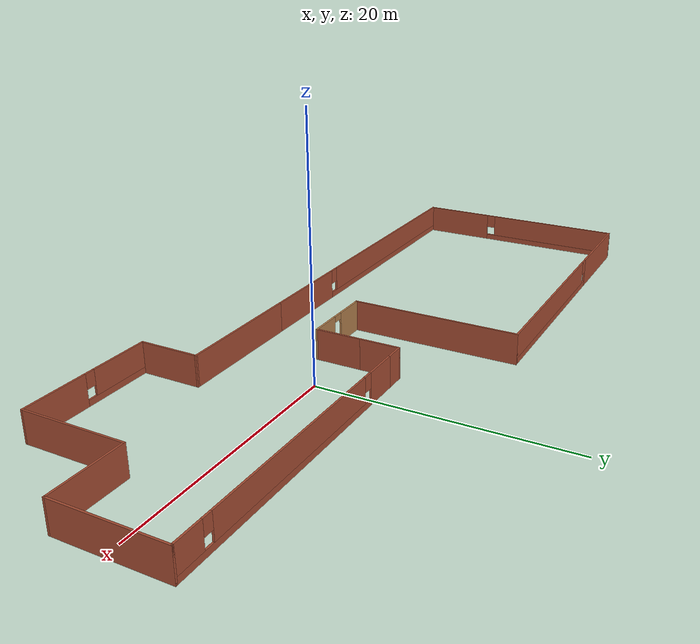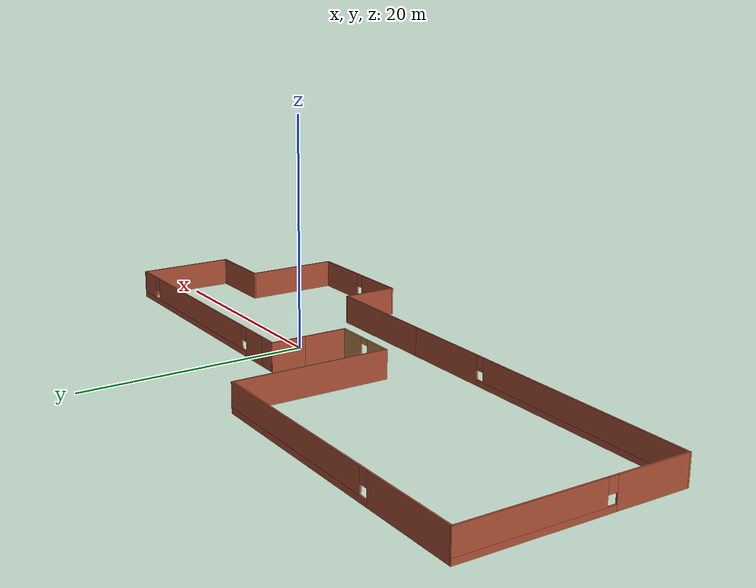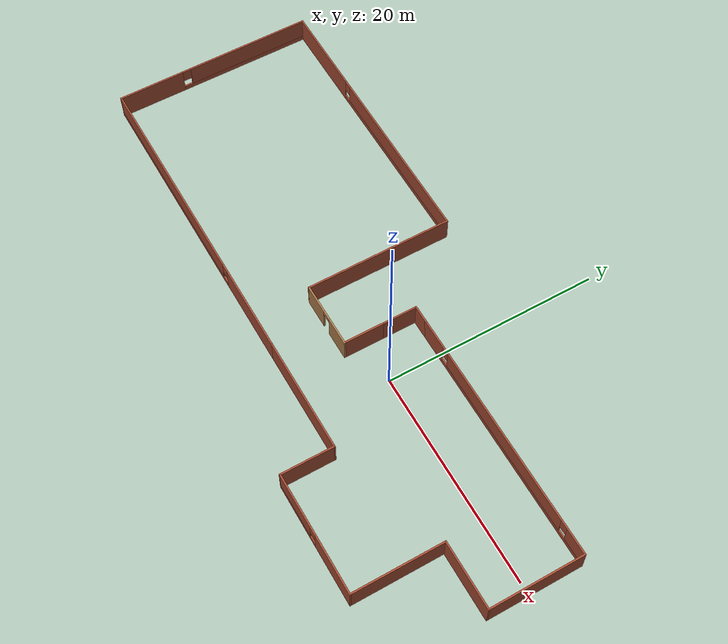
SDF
<?xml version='1.0'?>
<sdf version='1.6'>
  <model name='Balazs_Project1_Building'>
    <pose frame=''>-7.56 -0.32 0 0 -0 0</pose>
    <link name='Wall_0'>
      <collision name='Wall_0_Collision'>
        <geometry>
          <box>
            <size>3.75 0.15 2.5</size>
          </box>
        </geometry>
        <pose frame=''>0 0 1.25 0 -0 0</pose>
      </collision>
      <visual name='Wall_0_Visual'>
        <pose frame=''>0 0 1.25 0 -0 0</pose>
        <geometry>
          <box>
            <size>3.75 0.15 2.5</size>
          </box>
        </geometry>
        <material>
          <script>
            <uri>file://media/materials/scripts/gazebo.material</uri>
            <name>Gazebo/Bricks</name>
          </script>
          <ambient>1 1 1 1</ambient>
        </material>
        <meta>
          <layer>0</layer>
        </meta>
      </visual>
      <pose frame=''>3.75 0.2 0 0 -0 1.5708</pose>
    </link>
    <link name='Wall_10'>
      <collision name='Wall_10_Collision'>
        <geometry>
          <box>
            <size>5 0.15 2.5</size>
          </box>
        </geometry>
        <pose frame=''>0 0 1.25 0 -0 0</pose>
      </collision>
      <visual name='Wall_10_Visual'>
        <pose frame=''>0 0 1.25 0 -0 0</pose>
        <geometry>
          <box>
            <size>5 0.15 2.5</size>
          </box>
        </geometry>
        <material>
          <script>
            <uri>file://media/materials/scripts/gazebo.material</uri>
            <name>Gazebo/Bricks</name>
          </script>
          <ambient>1 1 1 1</ambient>
        </material>
        <meta>
          <layer>0</layer>
        </meta>
      </visual>
      <pose frame=''>11.5 -9.425 0 0 -0 1.5708</pose>
    </link>
    <link name='Wall_11'>
      <collision name='Wall_11_Collision'>
        <geometry>
          <box>
            <size>10.75 0.15 2.5</size>
          </box>
        </geometry>
        <pose frame=''>0 0 1.25 0 -0 0</pose>
      </collision>
      <visual name='Wall_11_Visual'>
        <pose frame=''>0 0 1.25 0 -0 0</pose>
        <geometry>
          <box>
            <size>10.75 0.15 2.5</size>
          </box>
        </geometry>
        <material>
          <script>
            <uri>file://media/materials/scripts/gazebo.material</uri>
            <name>Gazebo/Bricks</name>
          </script>
          <ambient>1 1 1 1</ambient>
        </material>
        <meta>
          <layer>0</layer>
        </meta>
      </visual>
      <pose frame=''>6.2 -7 0 0 -0 3.14159</pose>
    </link>
    <link name='Wall_12'>
      <pose frame=''>-13.9 -7 0 0 -0 3.14159</pose>
      <visual name='Wall_12_Visual_0'>
        <pose frame=''>-10.7696 0 1.25 0 -0 0</pose>
        <geometry>
          <box>
            <size>8.21088 0.15 2.5</size>
          </box>
        </geometry>
        <material>
          <script>
            <uri>file://media/materials/scripts/gazebo.material</uri>
            <name>Gazebo/Bricks</name>
          </script>
          <ambient>1 1 1 1</ambient>
        </material>
        <meta>
          <layer>0</layer>
        </meta>
      </visual>
      <collision name='Wall_12_Collision_0'>
        <geometry>
          <box>
            <size>8.21088 0.15 2.5</size>
          </box>
        </geometry>
        <pose frame=''>-10.7696 0 1.25 0 -0 0</pose>
      </collision>
      <visual name='Wall_12_Visual_1'>
        <pose frame=''>4.10544 0 0.25 0 -0 0</pose>
        <geometry>
          <box>
            <size>21.5391 0.15 0.5</size>
          </box>
        </geometry>
        <material>
          <script>
            <uri>file://media/materials/scripts/gazebo.material</uri>
            <name>Gazebo/Bricks</name>
          </script>
          <ambient>1 1 1 1</ambient>
        </material>
        <meta>
          <layer>0</layer>
        </meta>
      </visual>
      <collision name='Wall_12_Collision_1'>
        <geometry>
          <box>
            <size>21.5391 0.15 0.5</size>
          </box>
        </geometry>
        <pose frame=''>4.10544 0 0.25 0 -0 0</pose>
      </collision>
      <visual name='Wall_12_Visual_2'>
        <pose frame=''>4.50544 0 1.5 0 -0 0</pose>
        <geometry>
          <box>
            <size>20.7391 0.15 2</size>
          </box>
        </geometry>
        <material>
          <script>
            <uri>file://media/materials/scripts/gazebo.material</uri>
            <name>Gazebo/Bricks</name>
          </script>
          <ambient>1 1 1 1</ambient>
        </material>
        <meta>
          <layer>0</layer>
        </meta>
      </visual>
      <collision name='Wall_12_Collision_2'>
        <geometry>
          <box>
            <size>20.7391 0.15 2</size>
          </box>
        </geometry>
        <pose frame=''>4.50544 0 1.5 0 -0 0</pose>
      </collision>
      <visual name='Wall_12_Visual_3'>
        <pose frame=''>-6.26412 0 1.9 0 -0 0</pose>
        <geometry>
          <box>
            <size>0.8 0.15 1.2</size>
          </box>
        </geometry>
        <material>
          <script>
            <uri>file://media/materials/scripts/gazebo.material</uri>
            <name>Gazebo/Bricks</name>
          </script>
          <ambient>1 1 1 1</ambient>
        </material>
        <meta>
          <layer>0</layer>
        </meta>
      </visual>
      <collision name='Wall_12_Collision_3'>
        <geometry>
          <box>
            <size>0.8 0.15 1.2</size>
          </box>
        </geometry>
        <pose frame=''>-6.26412 0 1.9 0 -0 0</pose>
      </collision>
    </link>
    <link name='Wall_13'>
      <pose frame=''>-28.7 2.425 0 0 -0 1.5708</pose>
      <visual name='Wall_13_Visual_0'>
        <pose frame=''>-6.34988 0 1.25 0 -0 0</pose>
        <geometry>
          <box>
            <size>6.30024 0.15 2.5</size>
          </box>
        </geometry>
        <material>
          <script>
            <uri>file://media/materials/scripts/gazebo.material</uri>
            <name>Gazebo/Bricks</name>
          </script>
          <ambient>1 1 1 1</ambient>
        </material>
        <meta>
          <layer>0</layer>
        </meta>
      </visual>
      <collision name='Wall_13_Collision_0'>
        <geometry>
          <box>
            <size>6.30024 0.15 2.5</size>
          </box>
        </geometry>
        <pose frame=''>-6.34988 0 1.25 0 -0 0</pose>
      </collision>
      <visual name='Wall_13_Visual_1'>
        <pose frame=''>3.15012 0 0.25 0 -0 0</pose>
        <geometry>
          <box>
            <size>12.6998 0.15 0.5</size>
          </box>
        </geometry>
        <material>
          <script>
            <uri>file://media/materials/scripts/gazebo.material</uri>
            <name>Gazebo/Bricks</name>
          </script>
          <ambient>1 1 1 1</ambient>
        </material>
        <meta>
          <layer>0</layer>
        </meta>
      </visual>
      <collision name='Wall_13_Collision_1'>
        <geometry>
          <box>
            <size>12.6998 0.15 0.5</size>
          </box>
        </geometry>
        <pose frame=''>3.15012 0 0.25 0 -0 0</pose>
      </collision>
      <visual name='Wall_13_Visual_2'>
        <pose frame=''>3.55012 0 1.5 0 -0 0</pose>
        <geometry>
          <box>
            <size>11.8998 0.15 2</size>
          </box>
        </geometry>
        <material>
          <script>
            <uri>file://media/materials/scripts/gazebo.material</uri>
            <name>Gazebo/Bricks</name>
          </script>
          <ambient>1 1 1 1</ambient>
        </material>
        <meta>
          <layer>0</layer>
        </meta>
      </visual>
      <collision name='Wall_13_Collision_2'>
        <geometry>
          <box>
            <size>11.8998 0.15 2</size>
          </box>
        </geometry>
        <pose frame=''>3.55012 0 1.5 0 -0 0</pose>
      </collision>
      <visual name='Wall_13_Visual_3'>
        <pose frame=''>-2.79976 0 1.9 0 -0 0</pose>
        <geometry>
          <box>
            <size>0.8 0.15 1.2</size>
          </box>
        </geometry>
        <material>
          <script>
            <uri>file://media/materials/scripts/gazebo.material</uri>
            <name>Gazebo/Bricks</name>
          </script>
          <ambient>1 1 1 1</ambient>
        </material>
        <meta>
          <layer>0</layer>
        </meta>
      </visual>
      <collision name='Wall_13_Collision_3'>
        <geometry>
          <box>
            <size>0.8 0.15 1.2</size>
          </box>
        </geometry>
        <pose frame=''>-2.79976 0 1.9 0 -0 0</pose>
      </collision>
    </link>
    <link name='Wall_14'>
      <pose frame=''>-15.525 11.85 0 0 -0 0</pose>
      <visual name='Wall_14_Visual_0'>
        <pose frame=''>-8.97508 0 1.25 0 -0 0</pose>
        <geometry>
          <box>
            <size>8.54985 0.15 2.5</size>
          </box>
        </geometry>
        <material>
          <script>
            <uri>file://media/materials/scripts/gazebo.material</uri>
            <name>Gazebo/Bricks</name>
          </script>
          <ambient>1 1 1 1</ambient>
        </material>
        <meta>
          <layer>0</layer>
        </meta>
      </visual>
      <collision name='Wall_14_Collision_0'>
        <geometry>
          <box>
            <size>8.54985 0.15 2.5</size>
          </box>
        </geometry>
        <pose frame=''>-8.97508 0 1.25 0 -0 0</pose>
      </collision>
      <visual name='Wall_14_Visual_1'>
        <pose frame=''>4.27492 0 0.25 0 -0 0</pose>
        <geometry>
          <box>
            <size>17.9502 0.15 0.5</size>
          </box>
        </geometry>
        <material>
          <script>
            <uri>file://media/materials/scripts/gazebo.material</uri>
            <name>Gazebo/Bricks</name>
          </script>
          <ambient>1 1 1 1</ambient>
        </material>
        <meta>
          <layer>0</layer>
        </meta>
      </visual>
      <collision name='Wall_14_Collision_1'>
        <geometry>
          <box>
            <size>17.9502 0.15 0.5</size>
          </box>
        </geometry>
        <pose frame=''>4.27492 0 0.25 0 -0 0</pose>
      </collision>
      <visual name='Wall_14_Visual_2'>
        <pose frame=''>4.67492 0 1.5 0 -0 0</pose>
        <geometry>
          <box>
            <size>17.1502 0.15 2</size>
          </box>
        </geometry>
        <material>
          <script>
            <uri>file://media/materials/scripts/gazebo.material</uri>
            <name>Gazebo/Bricks</name>
          </script>
          <ambient>1 1 1 1</ambient>
        </material>
        <meta>
          <layer>0</layer>
        </meta>
      </visual>
      <collision name='Wall_14_Collision_2'>
        <geometry>
          <box>
            <size>17.1502 0.15 2</size>
          </box>
        </geometry>
        <pose frame=''>4.67492 0 1.5 0 -0 0</pose>
      </collision>
      <visual name='Wall_14_Visual_3'>
        <pose frame=''>-4.30015 0 1.9 0 -0 0</pose>
        <geometry>
          <box>
            <size>0.8 0.15 1.2</size>
          </box>
        </geometry>
        <material>
          <script>
            <uri>file://media/materials/scripts/gazebo.material</uri>
            <name>Gazebo/Bricks</name>
          </script>
          <ambient>1 1 1 1</ambient>
        </material>
        <meta>
          <layer>0</layer>
        </meta>
      </visual>
      <collision name='Wall_14_Collision_3'>
        <geometry>
          <box>
            <size>0.8 0.15 1.2</size>
          </box>
        </geometry>
        <pose frame=''>-4.30015 0 1.9 0 -0 0</pose>
      </collision>
    </link>
    <link name='Wall_15'>
      <collision name='Wall_15_Collision'>
        <geometry>
          <box>
            <size>13.75 0.15 2.5</size>
          </box>
        </geometry>
        <pose frame=''>0 0 1.25 0 -0 0</pose>
      </collision>
      <visual name='Wall_15_Visual'>
        <pose frame=''>0 0 1.25 0 -0 0</pose>
        <geometry>
          <box>
            <size>13.75 0.15 2.5</size>
          </box>
        </geometry>
        <material>
          <script>
            <uri>file://media/materials/scripts/gazebo.material</uri>
            <name>Gazebo/Bricks</name>
          </script>
          <ambient>1 1 1 1</ambient>
        </material>
        <meta>
          <layer>0</layer>
        </meta>
      </visual>
      <pose frame=''>-2.35 5.05 0 0 0 -1.5708</pose>
    </link>
    <link name='Wall_16'>
      <pose frame=''>0.699999 -1.75 0 0 -0 0</pose>
      <visual name='Wall_16_Visual_0'>
        <pose frame=''>-1.76829 0 1.25 0 -0 0</pose>
        <geometry>
          <box>
            <size>2.71342 0.15 2.5</size>
          </box>
        </geometry>
        <material>
          <script>
            <uri>file://media/materials/scripts/gazebo.material</uri>
            <name>Gazebo/Wood</name>
          </script>
          <ambient>1 1 1 1</ambient>
        </material>
        <meta>
          <layer>0</layer>
        </meta>
      </visual>
      <collision name='Wall_16_Collision_0'>
        <geometry>
          <box>
            <size>2.71342 0.15 2.5</size>
          </box>
        </geometry>
        <pose frame=''>-1.76829 0 1.25 0 -0 0</pose>
      </collision>
      <visual name='Wall_16_Visual_1'>
        <pose frame=''>1.80671 0 1.25 0 -0 0</pose>
        <geometry>
          <box>
            <size>2.63658 0.15 2.5</size>
          </box>
        </geometry>
        <material>
          <script>
            <uri>file://media/materials/scripts/gazebo.material</uri>
            <name>Gazebo/Wood</name>
          </script>
          <ambient>1 1 1 1</ambient>
        </material>
        <meta>
          <layer>0</layer>
        </meta>
      </visual>
      <collision name='Wall_16_Collision_1'>
        <geometry>
          <box>
            <size>2.63658 0.15 2.5</size>
          </box>
        </geometry>
        <pose frame=''>1.80671 0 1.25 0 -0 0</pose>
      </collision>
      <visual name='Wall_16_Visual_2'>
        <pose frame=''>0.038422 0 2.25 0 -0 0</pose>
        <geometry>
          <box>
            <size>0.9 0.15 0.5</size>
          </box>
        </geometry>
        <material>
          <script>
            <uri>file://media/materials/scripts/gazebo.material</uri>
            <name>Gazebo/Wood</name>
          </script>
          <ambient>1 1 1 1</ambient>
        </material>
        <meta>
          <layer>0</layer>
        </meta>
      </visual>
      <collision name='Wall_16_Collision_2'>
        <geometry>
          <box>
            <size>0.9 0.15 0.5</size>
          </box>
        </geometry>
        <pose frame=''>0.038422 0 2.25 0 -0 0</pose>
      </collision>
    </link>
    <link name='Wall_2'>
      <collision name='Wall_2_Collision'>
        <geometry>
          <box>
            <size>3.25 0.15 2.5</size>
          </box>
        </geometry>
        <pose frame=''>0 0 1.25 0 -0 0</pose>
      </collision>
      <visual name='Wall_2_Visual'>
        <pose frame=''>0 0 1.25 0 -0 0</pose>
        <geometry>
          <box>
            <size>3.25 0.15 2.5</size>
          </box>
        </geometry>
        <material>
          <script>
            <uri>file://media/materials/scripts/gazebo.material</uri>
            <name>Gazebo/Bricks</name>
          </script>
          <ambient>1 1 1 1</ambient>
        </material>
        <meta>
          <layer>0</layer>
        </meta>
      </visual>
      <pose frame=''>3.75 3.55 0 0 -0 1.5708</pose>
    </link>
    <link name='Wall_3'>
      <collision name='Wall_3_Collision'>
        <geometry>
          <box>
            <size>1.75 0.15 2.5</size>
          </box>
        </geometry>
        <pose frame=''>0 0 1.25 0 -0 0</pose>
      </collision>
      <visual name='Wall_3_Visual'>
        <pose frame=''>0 0 1.25 0 -0 0</pose>
        <geometry>
          <box>
            <size>1.75 0.15 2.5</size>
          </box>
        </geometry>
        <material>
          <script>
            <uri>file://media/materials/scripts/gazebo.material</uri>
            <name>Gazebo/Bricks</name>
          </script>
          <ambient>1 1 1 1</ambient>
        </material>
        <meta>
          <layer>0</layer>
        </meta>
      </visual>
      <pose frame=''>4.55 5.1 0 0 -0 0</pose>
    </link>
    <link name='Wall_5'>
      <pose frame=''>17.025 5.1 0 0 -0 0</pose>
      <visual name='Wall_5_Visual_0'>
        <pose frame=''>-10.3335 0 1.25 0 -0 0</pose>
        <geometry>
          <box>
            <size>2.83291 0.15 2.5</size>
          </box>
        </geometry>
        <material>
          <script>
            <uri>file://media/materials/scripts/gazebo.material</uri>
            <name>Gazebo/Bricks</name>
          </script>
          <ambient>1 1 1 1</ambient>
        </material>
        <meta>
          <layer>0</layer>
        </meta>
      </visual>
      <collision name='Wall_5_Collision_0'>
        <geometry>
          <box>
            <size>2.83291 0.15 2.5</size>
          </box>
        </geometry>
        <pose frame=''>-10.3335 0 1.25 0 -0 0</pose>
      </collision>
      <visual name='Wall_5_Visual_1'>
        <pose frame=''>1.41646 0 0.25 0 -0 0</pose>
        <geometry>
          <box>
            <size>20.6671 0.15 0.5</size>
          </box>
        </geometry>
        <material>
          <script>
            <uri>file://media/materials/scripts/gazebo.material</uri>
            <name>Gazebo/Bricks</name>
          </script>
          <ambient>1 1 1 1</ambient>
        </material>
        <meta>
          <layer>0</layer>
        </meta>
      </visual>
      <collision name='Wall_5_Collision_1'>
        <geometry>
          <box>
            <size>20.6671 0.15 0.5</size>
          </box>
        </geometry>
        <pose frame=''>1.41646 0 0.25 0 -0 0</pose>
      </collision>
      <visual name='Wall_5_Visual_2'>
        <pose frame=''>0.206149 0 1.5 0 -0 0</pose>
        <geometry>
          <box>
            <size>16.6465 0.15 2</size>
          </box>
        </geometry>
        <material>
          <script>
            <uri>file://media/materials/scripts/gazebo.material</uri>
            <name>Gazebo/Bricks</name>
          </script>
          <ambient>1 1 1 1</ambient>
        </material>
        <meta>
          <layer>0</layer>
        </meta>
      </visual>
      <collision name='Wall_5_Collision_2'>
        <geometry>
          <box>
            <size>16.6465 0.15 2</size>
          </box>
        </geometry>
        <pose frame=''>0.206149 0 1.5 0 -0 0</pose>
      </collision>
      <visual name='Wall_5_Visual_3'>
        <pose frame=''>10.5397 0 1.5 0 -0 0</pose>
        <geometry>
          <box>
            <size>2.42062 0.15 2</size>
          </box>
        </geometry>
        <material>
          <script>
            <uri>file://media/materials/scripts/gazebo.material</uri>
            <name>Gazebo/Bricks</name>
          </script>
          <ambient>1 1 1 1</ambient>
        </material>
        <meta>
          <layer>0</layer>
        </meta>
      </visual>
      <collision name='Wall_5_Collision_3'>
        <geometry>
          <box>
            <size>2.42062 0.15 2</size>
          </box>
        </geometry>
        <pose frame=''>10.5397 0 1.5 0 -0 0</pose>
      </collision>
      <visual name='Wall_5_Visual_4'>
        <pose frame=''>-8.51708 0 1.9 0 -0 0</pose>
        <geometry>
          <box>
            <size>0.8 0.15 1.2</size>
          </box>
        </geometry>
        <material>
          <script>
            <uri>file://media/materials/scripts/gazebo.material</uri>
            <name>Gazebo/Bricks</name>
          </script>
          <ambient>1 1 1 1</ambient>
        </material>
        <meta>
          <layer>0</layer>
        </meta>
      </visual>
      <collision name='Wall_5_Collision_4'>
        <geometry>
          <box>
            <size>0.8 0.15 1.2</size>
          </box>
        </geometry>
        <pose frame=''>-8.51708 0 1.9 0 -0 0</pose>
      </collision>
      <visual name='Wall_5_Visual_5'>
        <pose frame=''>8.92938 0 1.9 0 -0 0</pose>
        <geometry>
          <box>
            <size>0.8 0.15 1.2</size>
          </box>
        </geometry>
        <material>
          <script>
            <uri>file://media/materials/scripts/gazebo.material</uri>
            <name>Gazebo/Bricks</name>
          </script>
          <ambient>1 1 1 1</ambient>
        </material>
        <meta>
          <layer>0</layer>
        </meta>
      </visual>
      <collision name='Wall_5_Collision_5'>
        <geometry>
          <box>
            <size>0.8 0.15 1.2</size>
          </box>
        </geometry>
        <pose frame=''>8.92938 0 1.9 0 -0 0</pose>
      </collision>
    </link>
    <link name='Wall_6'>
      <collision name='Wall_6_Collision'>
        <geometry>
          <box>
            <size>8.75 0.15 2.5</size>
          </box>
        </geometry>
        <pose frame=''>0 0 1.25 0 -0 0</pose>
      </collision>
      <visual name='Wall_6_Visual'>
        <pose frame=''>0 0 1.25 0 -0 0</pose>
        <geometry>
          <box>
            <size>8.75 0.15 2.5</size>
          </box>
        </geometry>
        <material>
          <script>
            <uri>file://media/materials/scripts/gazebo.material</uri>
            <name>Gazebo/Bricks</name>
          </script>
          <ambient>1 1 1 1</ambient>
        </material>
        <meta>
          <layer>0</layer>
        </meta>
      </visual>
      <pose frame=''>28.7 0.8 0 0 0 -1.5708</pose>
    </link>
    <link name='Wall_7'>
      <collision name='Wall_7_Collision'>
        <geometry>
          <box>
            <size>6.25 0.15 2.5</size>
          </box>
        </geometry>
        <pose frame=''>0 0 1.25 0 -0 0</pose>
      </collision>
      <visual name='Wall_7_Visual'>
        <pose frame=''>0 0 1.25 0 -0 0</pose>
        <geometry>
          <box>
            <size>6.25 0.15 2.5</size>
          </box>
        </geometry>
        <material>
          <script>
            <uri>file://media/materials/scripts/gazebo.material</uri>
            <name>Gazebo/Bricks</name>
          </script>
          <ambient>1 1 1 1</ambient>
        </material>
        <meta>
          <layer>0</layer>
        </meta>
      </visual>
      <pose frame=''>25.65 -3.5 0 0 -0 3.14159</pose>
    </link>
    <link name='Wall_8'>
      <collision name='Wall_8_Collision'>
        <geometry>
          <box>
            <size>8.5 0.15 2.5</size>
          </box>
        </geometry>
        <pose frame=''>0 0 1.25 0 -0 0</pose>
      </collision>
      <visual name='Wall_8_Visual'>
        <pose frame=''>0 0 1.25 0 -0 0</pose>
        <geometry>
          <box>
            <size>8.5 0.15 2.5</size>
          </box>
        </geometry>
        <material>
          <script>
            <uri>file://media/materials/scripts/gazebo.material</uri>
            <name>Gazebo/Bricks</name>
          </script>
          <ambient>1 1 1 1</ambient>
        </material>
        <meta>
          <layer>0</layer>
        </meta>
      </visual>
      <pose frame=''>22.6 -7.675 0 0 0 -1.5708</pose>
    </link>
    <link name='Wall_9'>
      <pose frame=''>17.05 -11.85 0 0 -0 3.14159</pose>
      <visual name='Wall_9_Visual_0'>
        <pose frame=''>-2.90535 0 1.25 0 -0 0</pose>
        <geometry>
          <box>
            <size>5.4393 0.15 2.5</size>
          </box>
        </geometry>
        <material>
          <script>
            <uri>file://media/materials/scripts/gazebo.material</uri>
            <name>Gazebo/Bricks</name>
          </script>
          <ambient>1 1 1 1</ambient>
        </material>
        <meta>
          <layer>0</layer>
        </meta>
      </visual>
      <collision name='Wall_9_Collision_0'>
        <geometry>
          <box>
            <size>5.4393 0.15 2.5</size>
          </box>
        </geometry>
        <pose frame=''>-2.90535 0 1.25 0 -0 0</pose>
      </collision>
      <visual name='Wall_9_Visual_1'>
        <pose frame=''>2.71965 0 0.25 0 -0 0</pose>
        <geometry>
          <box>
            <size>5.8107 0.15 0.5</size>
          </box>
        </geometry>
        <material>
          <script>
            <uri>file://media/materials/scripts/gazebo.material</uri>
            <name>Gazebo/Bricks</name>
          </script>
          <ambient>1 1 1 1</ambient>
        </material>
        <meta>
          <layer>0</layer>
        </meta>
      </visual>
      <collision name='Wall_9_Collision_1'>
        <geometry>
          <box>
            <size>5.8107 0.15 0.5</size>
          </box>
        </geometry>
        <pose frame=''>2.71965 0 0.25 0 -0 0</pose>
      </collision>
      <visual name='Wall_9_Visual_2'>
        <pose frame=''>3.11965 0 1.5 0 -0 0</pose>
        <geometry>
          <box>
            <size>5.0107 0.15 2</size>
          </box>
        </geometry>
        <material>
          <script>
            <uri>file://media/materials/scripts/gazebo.material</uri>
            <name>Gazebo/Bricks</name>
          </script>
          <ambient>1 1 1 1</ambient>
        </material>
        <meta>
          <layer>0</layer>
        </meta>
      </visual>
      <collision name='Wall_9_Collision_2'>
        <geometry>
          <box>
            <size>5.0107 0.15 2</size>
          </box>
        </geometry>
        <pose frame=''>3.11965 0 1.5 0 -0 0</pose>
      </collision>
      <visual name='Wall_9_Visual_3'>
        <pose frame=''>0.214304 0 1.9 0 -0 0</pose>
        <geometry>
          <box>
            <size>0.8 0.15 1.2</size>
          </box>
        </geometry>
        <material>
          <script>
            <uri>file://media/materials/scripts/gazebo.material</uri>
            <name>Gazebo/Bricks</name>
          </script>
          <ambient>1 1 1 1</ambient>
        </material>
        <meta>
          <layer>0</layer>
        </meta>
      </visual>
      <collision name='Wall_9_Collision_3'>
        <geometry>
          <box>
            <size>0.8 0.15 1.2</size>
          </box>
        </geometry>
        <pose frame=''>0.214304 0 1.9 0 -0 0</pose>
      </collision>
    </link>
    <static>1</static>
  </model>
</sdf>
